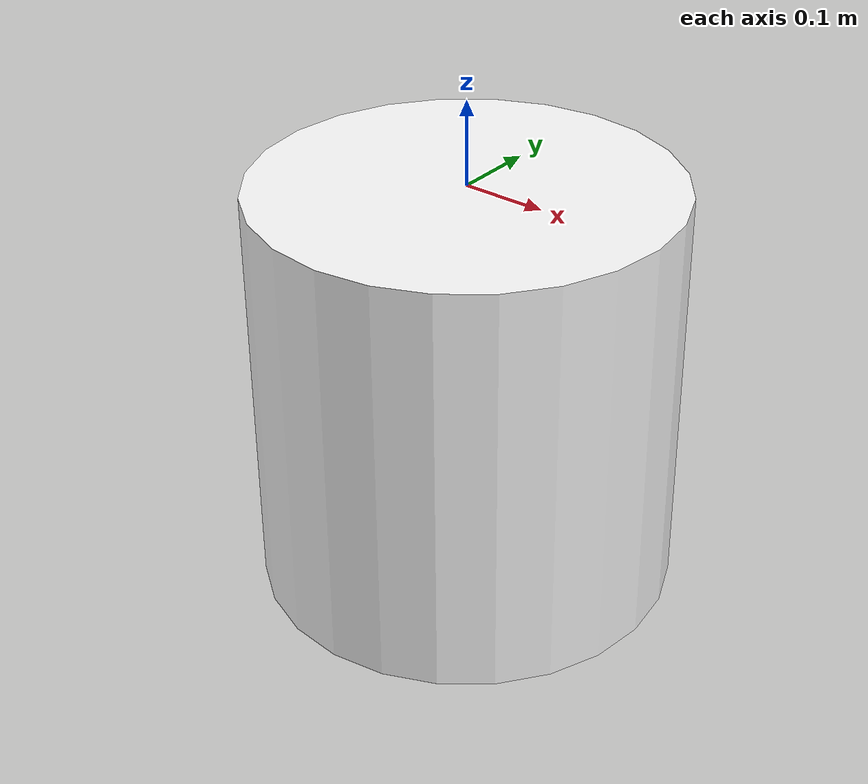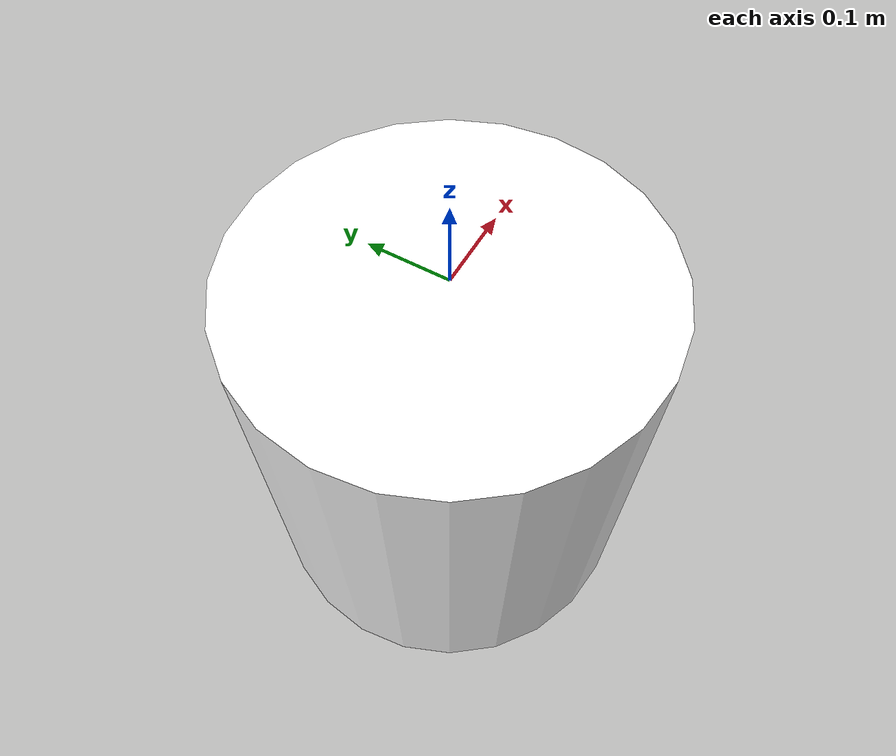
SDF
<?xml version='1.0'?>
<sdf version='1.7'>
  <model name='moving_white_cylinder'>
    <link name='link'>
      <inertial>
        <mass>1</mass>
        <inertia>
          <ixx>0.145833</ixx>
          <ixy>0</ixy>
          <ixz>0</ixz>
          <iyy>0.145833</iyy>
          <iyz>0</iyz>
          <izz>0.125</izz>
        </inertia>
        <pose>0 0 0 0 -0 0</pose>
      </inertial>
      <self_collide>0</self_collide>
      <enable_wind>0</enable_wind>
      <kinematic>0</kinematic>
      <pose>0 0 0 0 -0 0</pose>
      <gravity>1</gravity>
      <visual name='visual'>
        <geometry>
          <cylinder>
            <radius>0.25</radius>
            <length>0.5</length>
          </cylinder>
        </geometry>
        <material>
          <script>
            <name>Gazebo/Pedestrian</name>
            <uri>file://media/materials/scripts/gazebo.material</uri>
          </script>
          <shader type='pixel'>
            <normal_map>__default__</normal_map>
          </shader>
          <ambient>0.98 0.98 0.98 1</ambient>
          <diffuse>0.976 0.976 0.976 1</diffuse>
          <specular>0.976 0.976 0.976 1</specular>
          <emissive>0.976 0.976 0.976 1</emissive>
        </material>
        <pose>0 0 -0.25 0 -0 0</pose>
        <transparency>0</transparency>
        <cast_shadows>1</cast_shadows>
      </visual>
      <collision name='collision'>
        <laser_retro>0</laser_retro>
        <max_contacts>10</max_contacts>
        <pose>0 0 -0.25 0 -0 0</pose>
        <geometry>
          <cylinder>
            <radius>0.25</radius>
            <length>0.5</length>
          </cylinder>
        </geometry>
        <surface>
          <friction>
            <ode>
              <mu>1</mu>
              <mu2>1</mu2>
              <fdir1>0 0 0</fdir1>
              <slip1>0</slip1>
              <slip2>0</slip2>
            </ode>
            <torsional>
              <coefficient>1</coefficient>
              <patch_radius>0</patch_radius>
              <surface_radius>0</surface_radius>
              <use_patch_radius>1</use_patch_radius>
              <ode>
                <slip>0</slip>
              </ode>
            </torsional>
          </friction>
          <bounce>
            <restitution_coefficient>0</restitution_coefficient>
            <threshold>1e+06</threshold>
          </bounce>
          <contact>
            <collide_without_contact>0</collide_without_contact>
            <collide_without_contact_bitmask>1</collide_without_contact_bitmask>
            <collide_bitmask>1</collide_bitmask>
            <ode>
              <soft_cfm>0</soft_cfm>
              <soft_erp>0.2</soft_erp>
              <kp>1e+13</kp>
              <kd>1</kd>
              <max_vel>0.01</max_vel>
              <min_depth>0</min_depth>
            </ode>
            <bullet>
              <split_impulse>1</split_impulse>
              <split_impulse_penetration_threshold>-0.01</split_impulse_penetration_threshold>
              <soft_cfm>0</soft_cfm>
              <soft_erp>0.2</soft_erp>
              <kp>1e+13</kp>
              <kd>1</kd>
            </bullet>
          </contact>
        </surface>
      </collision>
    </link>
    <static>0</static>
    <allow_auto_disable>1</allow_auto_disable>
    <plugin name='bumper' filename='libgazebo_ros_bumper.so'>
      <ros>
        <namespace>/</namespace>
        <remapping>bumper:=collision</remapping>
      </ros>
      <frameName>base_link</frameName>
    </plugin>
  </model>
</sdf>
